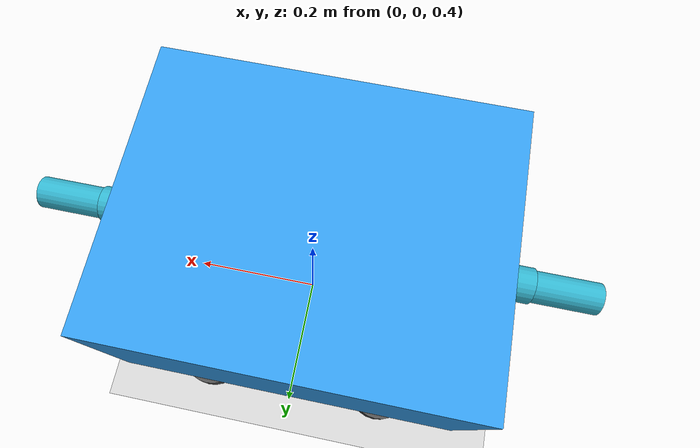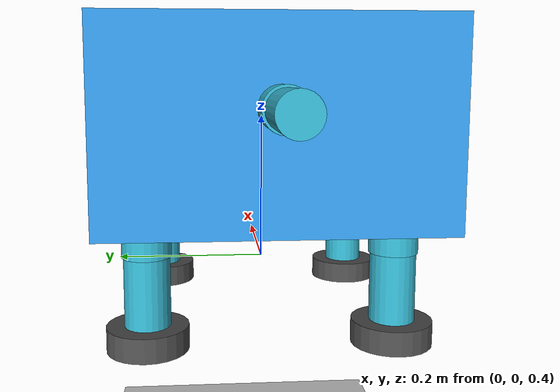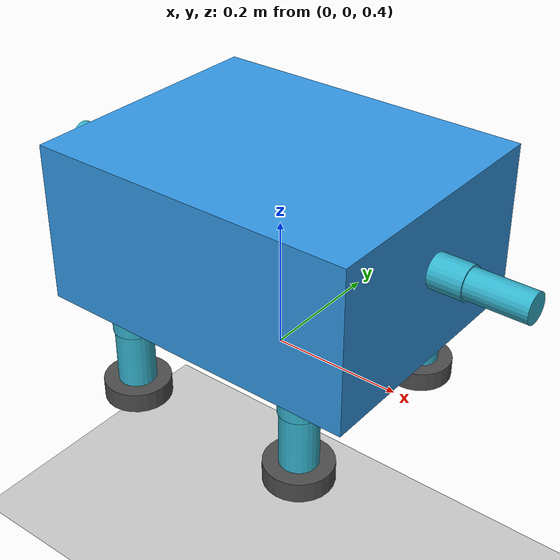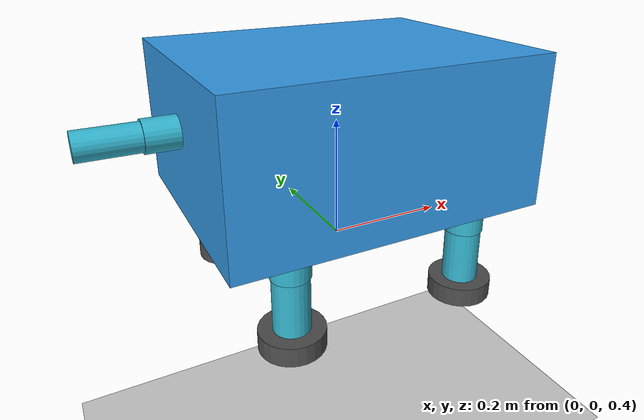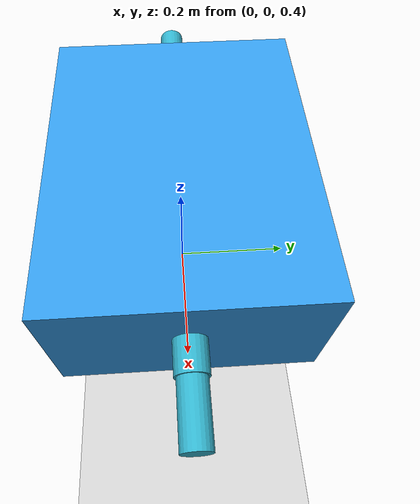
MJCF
<mujoco model="centauro">
  <compiler angle="degree" coordinate="local" inertiafromgeom="true"/>
  <option timestep="0.002" gravity="0 0 -9.81"/>

  <default>
    <joint armature="0.05" damping="0.5" limited="true"/>
    <geom conaffinity="0" condim="3" friction="1.0 0.1 0.1"
           rgba="0.2 0.7 0.8 1" solimp="0.9 0.95 0.01" solref="0.02 1"/>
  </default>

  <worldbody>
    <geom name="floor" type="plane" size="3 3 0.1" rgba="0.8 0.8 0.8 1"/>

    <body name="base" pos="0 0 0.6">
      <joint name="free" type="free"/>
      <geom name="base_box" type="box" size="0.25 0.2 0.12" rgba="0.2 0.6 0.9 1"/>

      <!-- 左前腿 -->
      <body name="lf_leg1" pos="-0.15 0.15 -0.08">
        <joint name="lf_j1" type="hinge" axis="0 1 0" range="-45 45"/>
        <geom type="cylinder" size="0.03 0.08" fromto="0 0 0 0 0 -0.08"/>
        <body name="lf_leg2" pos="0 0 -0.08">
          <joint name="lf_j2" type="hinge" axis="1 0 0" range="-90 90"/>
          <geom type="cylinder" size="0.028 0.10" fromto="0 0 0 0 0 -0.10"/>
          <body name="lf_wheel" pos="0 0 -0.10">
            <joint name="lf_wheel" type="hinge" axis="1 0 0" range="-10000 10000"/>
            <geom type="cylinder" size="0.05 0.015" axis="1 0 0" rgba="0.3 0.3 0.3 1"/>
          </body>
        </body>
      </body>

      <!-- 右前腿 -->
      <body name="rf_leg1" pos="0.15 0.15 -0.08">
        <joint name="rf_j1" type="hinge" axis="0 1 0" range="-45 45"/>
        <geom type="cylinder" size="0.03 0.08" fromto="0 0 0 0 0 -0.08"/>
        <body name="rf_leg2" pos="0 0 -0.08">
          <joint name="rf_j2" type="hinge" axis="1 0 0" range="-90 90"/>
          <geom type="cylinder" size="0.028 0.10" fromto="0 0 0 0 0 -0.10"/>
          <body name="rf_wheel" pos="0 0 -0.10">
            <joint name="rf_wheel" type="hinge" axis="1 0 0" range="-10000 10000"/>
            <geom type="cylinder" size="0.05 0.015" axis="1 0 0" rgba="0.3 0.3 0.3 1"/>
          </body>
        </body>
      </body>

      <!-- 左后腿 -->
      <body name="lb_leg1" pos="-0.15 -0.15 -0.08">
        <joint name="lb_j1" type="hinge" axis="0 1 0" range="-45 45"/>
        <geom type="cylinder" size="0.03 0.08" fromto="0 0 0 0 0 -0.08"/>
        <body name="lb_leg2" pos="0 0 -0.08">
          <joint name="lb_j2" type="hinge" axis="1 0 0" range="-90 90"/>
          <geom type="cylinder" size="0.028 0.10" fromto="0 0 0 0 0 -0.10"/>
          <body name="lb_wheel" pos="0 0 -0.10">
            <joint name="lb_wheel" type="hinge" axis="1 0 0" range="-10000 10000"/>
            <geom type="cylinder" size="0.05 0.015" axis="1 0 0" rgba="0.3 0.3 0.3 1"/>
          </body>
        </body>
      </body>

      <!-- 右后腿 -->
      <body name="rb_leg1" pos="0.15 -0.15 -0.08">
        <joint name="rb_j1" type="hinge" axis="0 1 0" range="-45 45"/>
        <geom type="cylinder" size="0.03 0.08" fromto="0 0 0 0 0 -0.08"/>
        <body name="rb_leg2" pos="0 0 -0.08">
          <joint name="rb_j2" type="hinge" axis="1 0 0" range="-90 90"/>
          <geom type="cylinder" size="0.028 0.10" fromto="0 0 0 0 0 -0.10"/>
          <body name="rb_wheel" pos="0 0 -0.10">
            <joint name="rb_wheel" type="hinge" axis="1 0 0" range="-10000 10000"/>
            <geom type="cylinder" size="0.05 0.015" axis="1 0 0" rgba="0.3 0.3 0.3 1"/>
          </body>
        </body>
      </body>

      <!-- 左臂 -->
      <body name="l_arm1" pos="-0.2 0 0.02">
        <joint name="l_arm_j1" type="hinge" axis="0 1 0" range="-90 90"/>
        <geom type="cylinder" size="0.025 0.10" fromto="0 0 0 -0.10 0 0"/>
        <body name="l_arm2" pos="-0.10 0 0">
          <joint name="l_arm_j2" type="hinge" axis="0 0 1" range="-90 90"/>
          <geom type="cylinder" size="0.022 0.09" fromto="0 0 0 -0.09 0 0"/>
        </body>
      </body>

      <!-- 右臂 -->
      <body name="r_arm1" pos="0.2 0 0.02">
        <joint name="r_arm_j1" type="hinge" axis="0 1 0" range="-90 90"/>
        <geom type="cylinder" size="0.025 0.10" fromto="0 0 0 0.10 0 0"/>
        <body name="r_arm2" pos="0.10 0 0">
          <joint name="r_arm_j2" type="hinge" axis="0 0 1" range="-90 90"/>
          <geom type="cylinder" size="0.022 0.09" fromto="0 0 0 0.09 0 0"/>
        </body>
      </body>

    </body>
  </worldbody>

  <actuator>
    <motor name="lf_j1" joint="lf_j1" gear="20"/>
    <motor name="lf_j2" joint="lf_j2" gear="20"/>
    <motor name="rf_j1" joint="rf_j1" gear="20"/>
    <motor name="rf_j2" joint="rf_j2" gear="20"/>
    <motor name="lb_j1" joint="lb_j1" gear="20"/>
    <motor name="lb_j2" joint="lb_j2" gear="20"/>
    <motor name="rb_j1" joint="rb_j1" gear="20"/>
    <motor name="rb_j2" joint="rb_j2" gear="20"/>

    <!-- 轮子 -->
    <motor name="lf_wheel" joint="lf_wheel" gear="10"/>
    <motor name="rf_wheel" joint="rf_wheel" gear="10"/>
    <motor name="lb_wheel" joint="lb_wheel" gear="10"/>
    <motor name="rb_wheel" joint="rb_wheel" gear="10"/>

    <!-- 手臂 -->
    <motor name="l_arm_j1" joint="l_arm_j1" gear="10"/>
    <motor name="l_arm_j2" joint="l_arm_j2" gear="10"/>
    <motor name="r_arm_j1" joint="r_arm_j1" gear="10"/>
    <motor name="r_arm_j2" joint="r_arm_j2" gear="10"/>
  </actuator>
</mujoco>
